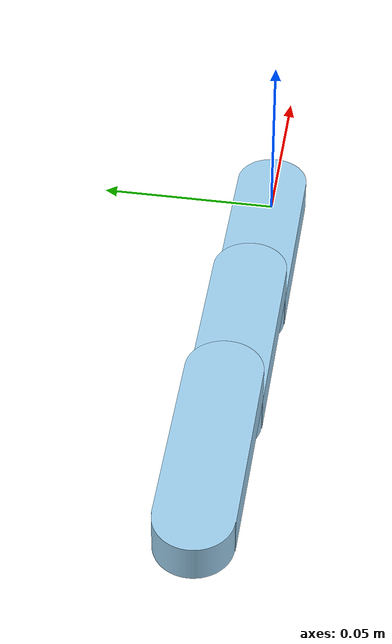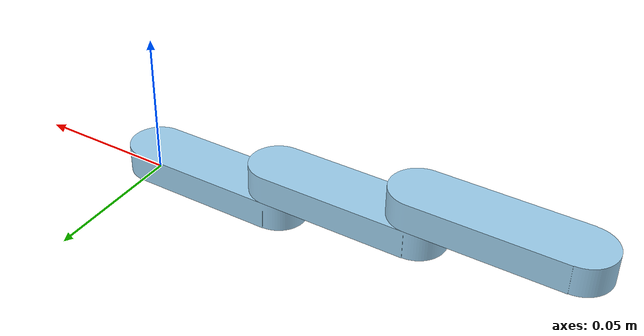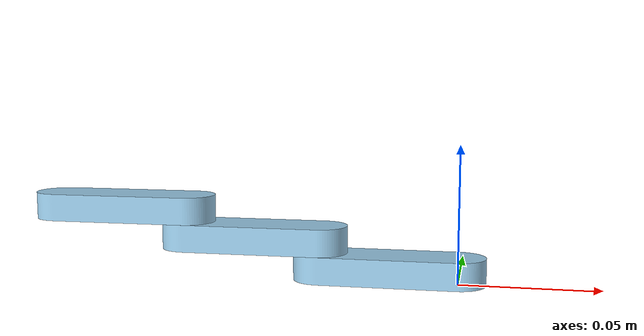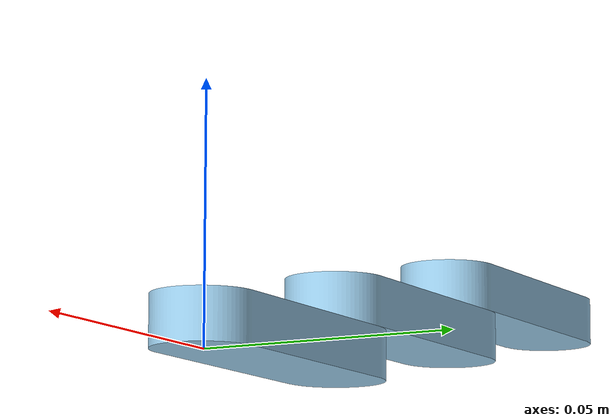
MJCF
<mujoco model="MuJoCo Model">
  <compiler angle="radian"/>

  <default>
    <geom type="mesh"/>
  </default>

  <asset>
    <mesh name="link" file="/Users/mohammadhamid/Mujoco/onshape_to_mjcf_ws/onshape-to-mjcf/examples/group_feature_parent_gchild/group_feature_parent_gchild/assets/link.stl"/>
  </asset>

  <worldbody>
    <body name="base">
      <geom quat="0.5 0.5 -0.5 0.5" rgba="0.615686 0.811765 0.929412 1" mesh="link"/>
      <body name="link" pos="-0.05 0 0.01" quat="0 0 -1 0">
        <joint name="Revolute 11" pos="0 0 0" axis="0 0 1" range="-3.14 3.14"/>
        <geom pos="0.05 0 -0.02" quat="0.5 -0.5 -0.5 -0.5" rgba="0.615686 0.811765 0.929412 1" mesh="link"/>
        <geom pos="0 0 -0.01" quat="0.5 -0.5 -0.5 -0.5" rgba="0.615686 0.811765 0.929412 1" mesh="link"/>
      </body>
    </body>
  </worldbody>
</mujoco>
